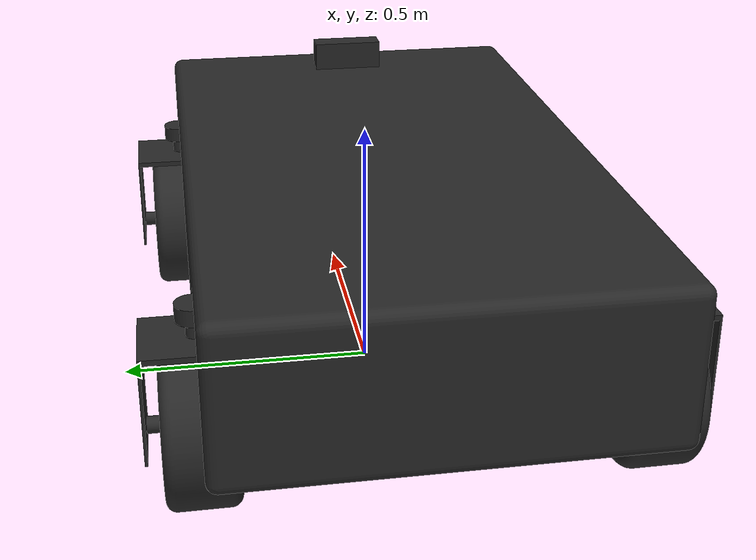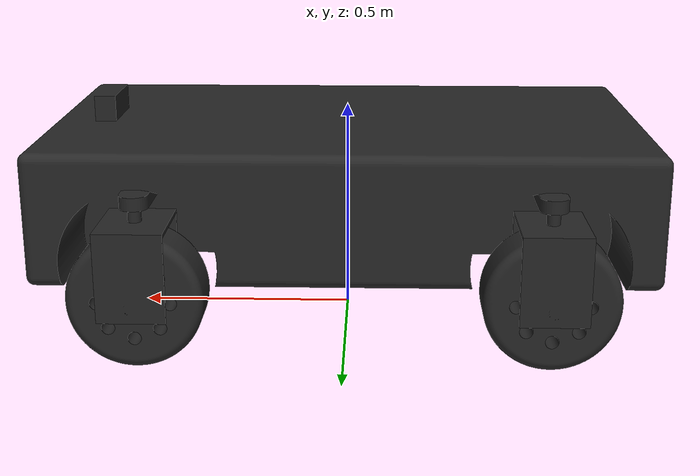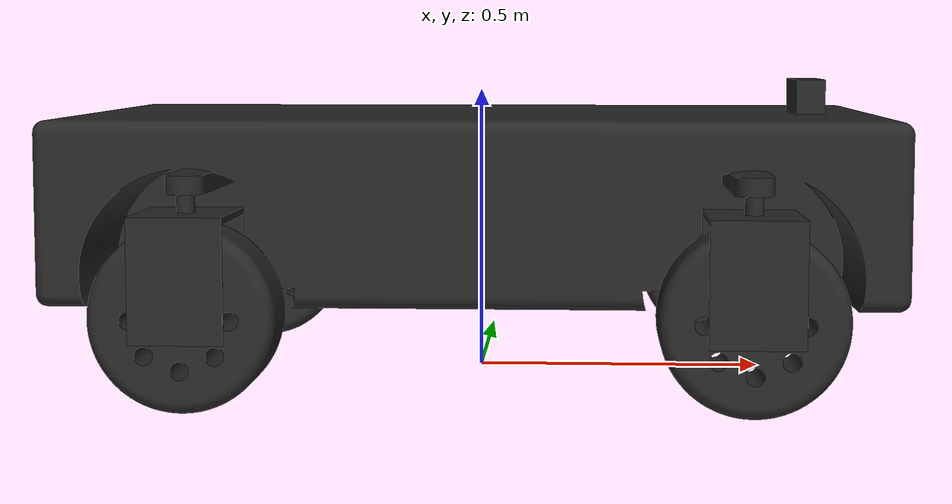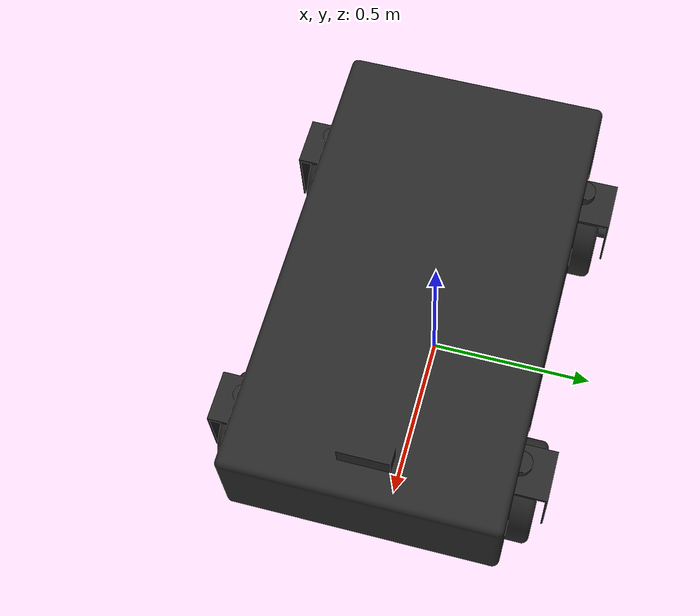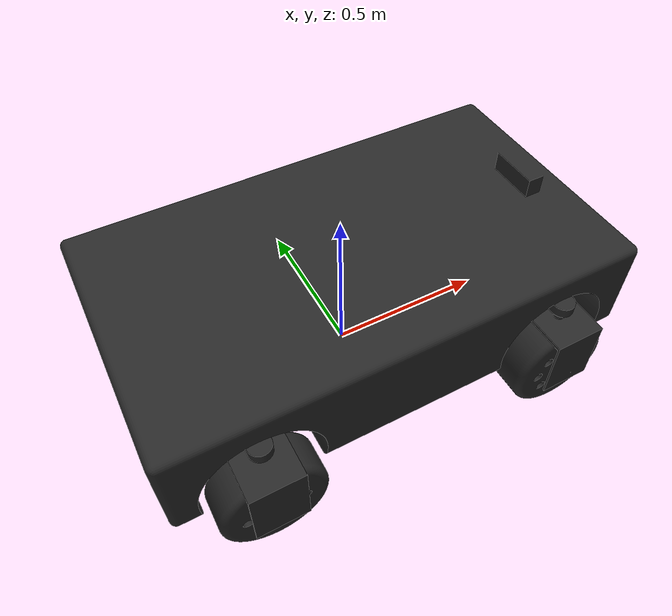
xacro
<?xml version="1.0" ?>
<robot name="vehicle_4ws" xmlns:xacro="http://www.ros.org/wiki/xacro">

<xacro:property name="PI" value="3.1415926535897932384626433832795028841971" />
<xacro:property name="gravitational_acceleration" value="9.80665" />
<xacro:property name="vehicle1_Yaw" value="-PI/4" />

<!-- 荷台と連結点のmass -->
<xacro:property name="fusion_vehicle_body_mass" value="2113.272311120373" />
<xacro:property name="vehicle_body_mass" value="100" />
<xacro:property name="vehicle_inertia_coef" value="${vehicle_body_mass/fusion_vehicle_body_mass}" />

<xacro:property name="wheel_mass" value="4.639715839283939" />

<!-- frontは受動車輪なので低めに設定 -->
<xacro:property name="front_wheel_joint_damping" value="1.0"/>
<xacro:property name="front_wheel_joint_mu" value="0.1" />
<xacro:property name="front_wheel_joint_friction" value="${front_wheel_joint_mu* gravitational_acceleration * wheel_mass  }" />
<xacro:property name="front_steering_damping" value="3.0" />
<xacro:property name="front_steering_mu" value="0.001" />
<xacro:property name="front_steering_friction" value="${front_steering_mu * gravitational_acceleration * 0.25*vehicle_body_mass}" />

<!-- rearは駆動輪なので、入力以外で動かないように設定 -->
<xacro:property name="rear_wheel_joint_damping" value="1.0"/>
<xacro:property name="rear_wheel_joint_mu" value="0.1" />
<xacro:property name="rear_wheel_joint_friction" value="${rear_wheel_joint_mu* gravitational_acceleration * wheel_mass }" />
<xacro:property name="rear_steering_damping" value="3.0" />
<xacro:property name="rear_steering_mu" value="0.001" />
<xacro:property name="rear_steering_friction" value="${rear_steering_mu * gravitational_acceleration * 0.25*vehicle_body_mass}" />

<!-- wheelの接地面の摩擦などを定義 -->
<xacro:property name="wheel_surface_mu1" value="0.8"/>
<xacro:property name="wheel_surface_mu2" value="0.8" />
<xacro:property name="wheel_kp" value="5e4" />
<xacro:property name="wheel_kd" value="1.0" />
<xacro:property name="wheel_minDepth" value="0.01" />
<xacro:property name="wheel_maxVel" value="1.0" />

<!-- rotationは共通 -->
<xacro:property name="rotational_joint_damping" value="0.01" />
<xacro:property name="rotational_joint_mu" value="0.001" />
<xacro:property name="rotational_joint_friction" value="${rotational_joint_mu * gravitational_acceleration}" />

<xacro:include filename="$(find 4ws_backstepping)/urdf/materials.xacro" />
<xacro:include filename="$(find 4ws_backstepping)/urdf/vehicle_4ws.trans" />
<xacro:include filename="$(find 4ws_backstepping)/urdf/vehicle_4ws.gazebo" />

<link name="base_link"/>

<link name="body_link">
  <inertial>
    <origin xyz="0.001411408730126027 0.0 -0.05" rpy="0 0 0"/>
    <mass value="${vehicle_body_mass}"/>
    <inertia ixx="${vehicle_inertia_coef*114.688091}" iyy="${vehicle_inertia_coef*336.418835}" izz="${vehicle_inertia_coef*418.647558}" ixy="${vehicle_inertia_coef*0.010139}" iyz="${vehicle_inertia_coef*0.002956}" ixz="${-vehicle_inertia_coef*0.33997}"/>
  </inertial>
  <visual>
    <origin xyz="0 0 -0.376" rpy="0 0 0"/>
    <geometry>
      <mesh filename="package://4ws_backstepping/new_meshes/base_link.stl" scale="0.001 0.001 0.001"/>
    </geometry>
    <material name="_"/>
  </visual>
  <collision>
    <origin xyz="0 0.0 -0.376" rpy="0 0 0"/>
    <geometry>
      <mesh filename="package://4ws_backstepping/new_meshes/base_link.stl" scale="0.001 0.001 0.001"/>
    </geometry>
  </collision>
</link>

<link name="v1_rear_1">
  <inertial>
    <origin xyz="2.514264385022891e-07 -0.05 -0.014912246259012996" rpy="0 0 0"/>
    <mass value="12.646385127140846"/>
    <inertia ixx="0.752015" iyy="0.005192" izz="0.755318" ixy="0.0" iyz="0.0" ixz="-0.0"/>
  </inertial>
  <visual>
    <origin xyz="0.44955 -0.05752 -0.376" rpy="0 0 0"/>
    <geometry>
      <mesh filename="package://4ws_backstepping/new_meshes/v1_rear_1.stl" scale="0.001 0.001 0.001"/>
    </geometry>
    <material name="_"/>
  </visual>
  <collision>
    <origin xyz="0.44955 -0.05752 -0.376" rpy="0 0 0"/>
    <geometry>
      <mesh filename="package://4ws_backstepping/new_meshes/v1_rear_1.stl" scale="0.001 0.001 0.001"/>
    </geometry>
  </collision>
</link>

<link name="v1_front_1">
  <inertial>
    <origin xyz="2.5142643794717756e-07 -0.05 -0.014912246259013162" rpy="0 0 0"/>
    <mass value="12.64638512714101"/>
    <inertia ixx="0.752015" iyy="0.005192" izz="0.755318" ixy="-0.0" iyz="0.0" ixz="-0.0"/>
  </inertial>
  <visual>
    <origin xyz="-0.45045 -0.05752 -0.376" rpy="0 0 0"/>
    <geometry>
      <mesh filename="package://4ws_backstepping/new_meshes/v1_front_1.stl" scale="0.001 0.001 0.001"/>
    </geometry>
    <material name="_"/>
  </visual>
  <collision>
    <origin xyz="-0.45045 -0.05752 -0.376" rpy="0 0 0"/>
    <geometry>
      <mesh filename="package://4ws_backstepping/new_meshes/v1_front_1.stl" scale="0.001 0.001 0.001"/>
    </geometry>
  </collision>
</link>

<link name="new_hinge_1">
  <inertial>
    <origin xyz="-6.714468377522209e-05 -0.05 -0.11523004751915897" rpy="0 0 0"/>
    <mass value="4.884144703315957"/>
    <inertia ixx="0.039519" iyy="0.032652" izz="0.021551" ixy="0.0" iyz="0.0" ixz="-3e-05"/>
  </inertial>
  <visual>
    <origin xyz="-0.45045 0.34348 -0.356" rpy="0 0 0"/>
    <geometry>
      <mesh filename="package://4ws_backstepping/new_meshes/new_hinge_1.stl" scale="0.001 0.001 0.001"/>
    </geometry>
    <material name="_"/>
  </visual>
  <collision>
    <origin xyz="-0.45045 0.34348 -0.356" rpy="0 0 0"/>
    <geometry>
      <mesh filename="package://4ws_backstepping/new_meshes/new_hinge_1.stl" scale="0.001 0.001 0.001"/>
    </geometry>
  </collision>
</link>

<link name="new_hinge_3">
  <inertial>
    <origin xyz="-6.714468377522209e-05 -0.05 -0.11523004751915977" rpy="0 0 0"/>
    <mass value="4.884144703315957"/>
    <inertia ixx="0.039519" iyy="0.032652" izz="0.021551" ixy="-0.0" iyz="0.0" ixz="-3e-05"/>
  </inertial>
  <visual>
    <origin xyz="-0.45045 -0.45752 -0.356" rpy="0 0 0"/>
    <geometry>
      <mesh filename="package://4ws_backstepping/new_meshes/new_hinge_3.stl" scale="0.001 0.001 0.001"/>
    </geometry>
    <material name="_"/>
  </visual>
  <collision>
    <origin xyz="-0.45045 -0.45752 -0.356" rpy="0 0 0"/>
    <geometry>
      <mesh filename="package://4ws_backstepping/new_meshes/new_hinge_3.stl" scale="0.001 0.001 0.001"/>
    </geometry>
  </collision>
</link>

<link name="new_hinge_2">
  <inertial>
    <origin xyz="-6.714468377322369e-05 -0.05 -0.1152300475191588" rpy="0 0 0"/>
    <mass value="4.884144703315957"/>
    <inertia ixx="0.039519" iyy="0.032652" izz="0.021551" ixy="0.0" iyz="0.0" ixz="-3e-05"/>
  </inertial>
  <visual>
    <origin xyz="0.44955 0.34348 -0.356" rpy="0 0 0"/>
    <geometry>
      <mesh filename="package://4ws_backstepping/new_meshes/new_hinge_2.stl" scale="0.001 0.001 0.001"/>
    </geometry>
    <material name="_"/>
  </visual>
  <collision>
    <origin xyz="0.44955 0.34348 -0.356" rpy="0 0 0"/>
    <geometry>
      <mesh filename="package://4ws_backstepping/new_meshes/new_hinge_2.stl" scale="0.001 0.001 0.001"/>
    </geometry>
  </collision>
</link>

<link name="new_hinge_4">
  <inertial>
    <origin xyz="-6.714468377405636e-05 -0.05 -0.11523004751915963" rpy="0 0 0"/>
    <mass value="4.884144703315957"/>
    <inertia ixx="0.039519" iyy="0.032652" izz="0.021551" ixy="0.0" iyz="0.0" ixz="-3e-05"/>
  </inertial>
  <visual>
    <origin xyz="0.44955 -0.45752 -0.356" rpy="0 0 0"/>
    <geometry>
      <mesh filename="package://4ws_backstepping/new_meshes/new_hinge_4.stl" scale="0.001 0.001 0.001"/>
    </geometry>
    <material name="_"/>
  </visual>
  <collision>
    <origin xyz="0.44955 -0.45752 -0.356" rpy="0 0 0"/>
    <geometry>
      <mesh filename="package://4ws_backstepping/new_meshes/new_hinge_4.stl" scale="0.001 0.001 0.001"/>
    </geometry>
  </collision>
</link>

<!-- ホイールのリンク設定 -->
<link name="new_wheel_1">
  <inertial>
    <origin xyz="3.1709373395083507e-05 -0.05 0.00021681028363659816" rpy="0 0 0"/>
    <mass value="4.639715839283939"/>
    <inertia ixx="0.029034" iyy="0.053334" izz="0.029034" ixy="-0.0" iyz="0.0" ixz="0.0"/>
  </inertial>
  <visual>
    <origin xyz="-0.450031 0.34348 -0.150215" rpy="0 0 0"/>
    <geometry>
      <mesh filename="package://4ws_backstepping/new_meshes/new_wheel_1.stl" scale="0.001 0.001 0.001"/>
    </geometry>
    <material name="_"/>
  </visual>
  <collision>
    <origin xyz="0 -0.05 0" rpy="1.57 0 0"/>
    <geometry>
      <cylinder radius="0.153" length="0.1"/>
    </geometry>

    <!-- ここから SDF の surface/friction -->
    <surface>
      <friction>
        <ode>
          <mu>${wheel_surface_mu1}</mu>
          <mu2>${wheel_surface_mu2}</mu2>
        </ode>
      </friction>
      <contact>
        <ode>
          <kp>${wheel_kp}</kp>
          <kd>${wheel_kd}</kd>
          <minDepth>${wheel_minDepth}</minDepth>
          <maxVel>${wheel_maxVel}</maxVel>
        </ode>
      </contact>
    </surface>
  </collision>
</link>

<link name="new_wheel_2">
  <inertial>
    <origin xyz="3.1709373397914575e-05 -0.05 0.00021681028363673693" rpy="0 0 0"/>
    <mass value="4.639715839283939"/>
    <inertia ixx="0.029034" iyy="0.053334" izz="0.029034" ixy="0.0" iyz="0.0" ixz="0.0"/>
  </inertial>
  <visual>
    <origin xyz="0.449969 0.34348 -0.150215" rpy="0 0 0"/>
    <geometry>
      <mesh filename="package://4ws_backstepping/new_meshes/new_wheel_2.stl" scale="0.001 0.001 0.001"/>
    </geometry>
    <material name="_"/>
  </visual>
  <collision>
    <origin xyz="0 -0.05 0" rpy="1.57 0 0"/>
    <geometry>
      <cylinder radius="0.153" length="0.1"/>
    </geometry>

    <!-- ここから SDF の surface/friction -->
    <surface>
      <friction>
        <ode>
          <mu>${wheel_surface_mu1}</mu>
          <mu2>${wheel_surface_mu2}</mu2>
        </ode>
      </friction>
      <contact>
        <ode>
          <kp>${wheel_kp}</kp>
          <kd>${wheel_kd}</kd>
          <minDepth>${wheel_minDepth}</minDepth>
          <maxVel>${wheel_maxVel}</maxVel>
        </ode>
      </contact>
    </surface>
  </collision>
</link>

<link name="new_wheel_3">
  <inertial>
    <origin xyz="3.1709373395083507e-05 -0.05 0.00021681028363579324" rpy="0 0 0"/>
    <mass value="4.639715839283939"/>
    <inertia ixx="0.029034" iyy="0.053334" izz="0.029034" ixy="0.0" iyz="0.0" ixz="0.0"/>
  </inertial>
  <visual>
    <origin xyz="-0.450031 -0.45752 -0.150215" rpy="0 0 0"/>
    <geometry>
      <mesh filename="package://4ws_backstepping/new_meshes/new_wheel_3.stl" scale="0.001 0.001 0.001"/>
    </geometry>
    <material name="_"/>
  </visual>
  <collision>
    <origin xyz="0 -0.05 0" rpy="1.57 0 0"/>
    <geometry>
      <cylinder radius="0.153" length="0.1"/>
    </geometry>

    <!-- ここから SDF の surface/friction -->
    <surface>
      <friction>
        <ode>
          <mu>${wheel_surface_mu1}</mu>
          <mu2>${wheel_surface_mu2}</mu2>
        </ode>
      </friction>
      <contact>
        <ode>
          <kp>${wheel_kp}</kp>
          <kd>${wheel_kd}</kd>
          <minDepth>${wheel_minDepth}</minDepth>
          <maxVel>${wheel_maxVel}</maxVel>
        </ode>
      </contact>
    </surface>
  </collision>
</link>

<link name="new_wheel_4">
  <inertial>
    <origin xyz="3.170937339708191e-05 -0.05 0.00021681028363593202" rpy="0 0 0"/>
    <mass value="4.639715839283939"/>
    <inertia ixx="0.029034" iyy="0.053334" izz="0.029034" ixy="0.0" iyz="0.0" ixz="0.0"/>
  </inertial>
  <visual>
    <origin xyz="0.449969 -0.45752 -0.150215" rpy="0 0 0"/>
    <geometry>
      <mesh filename="package://4ws_backstepping/new_meshes/new_wheel_4.stl" scale="0.001 0.001 0.001"/>
    </geometry>
    <material name="_"/>
  </visual>
  <collision>
    <origin xyz="0 -0.05 0" rpy="1.57 0 0"/>
    <geometry>
      <cylinder radius="0.153" length="0.1"/>
    </geometry>

    <!-- ここから SDF の surface/friction -->
    <surface>
      <friction>
        <ode>
          <mu>${wheel_surface_mu1}</mu>
          <mu2>${wheel_surface_mu2}</mu2>
        </ode>
      </friction>
      <contact>
        <ode>
          <kp>${wheel_kp}</kp>
          <kd>${wheel_kd}</kd>
          <minDepth>${wheel_minDepth}</minDepth>
          <maxVel>${wheel_maxVel}</maxVel>
        </ode>
      </contact>
    </surface>
  </collision>
</link>

<joint name="body" type="fixed">
  <origin xyz="0 -0.05 0.376" rpy="0 0 0"/>
  <parent link="base_link"/>
  <child link="body_link"/>
</joint>

<joint name="v1_body_to_rear" type="fixed">
  <origin xyz="-0.44955 0.05752 0" rpy="0 0 0"/>
  <parent link="body_link"/>
  <child link="v1_rear_1"/>
</joint>

<joint name="v1_body_to_front" type="fixed">
  <origin xyz="0.45045 0.05752 0" rpy="0 0 0"/>
  <parent link="body_link"/>
  <child link="v1_front_1"/>
</joint>

<joint name="front_right_steering" type="revolute">
  <origin xyz="0.0 -0.4 -0.02" rpy="0 0 0"/>
  <parent link="v1_front_1"/>
  <child link="new_hinge_1"/>
  <dynamics damping="${front_steering_damping}" friction="${front_steering_friction}"/>
  <axis xyz="0.0 0.0 1.0"/>
  <limit upper="1.57" lower="-1.57" effort="200" velocity="200"/>
</joint>

<joint name="front_right_wheel" type="continuous">
  <origin xyz="-0.000419 0.0 -0.205785" rpy="0 0 0"/>
  <parent link="new_hinge_1"/>
  <child link="new_wheel_1"/>
  <dynamics damping="${front_wheel_joint_damping}" friction="${front_wheel_joint_friction}"/>
  <limit effort="500" velocity="500"/>
  <axis xyz="0.0 1.0 -0.0"/>
</joint>

<joint name="rear_right_wheel" type="continuous">
  <origin xyz="-0.000419 0.0 -0.205785" rpy="0 0 0"/>
  <parent link="new_hinge_2"/>
  <child link="new_wheel_2"/>
  <dynamics damping="${rear_wheel_joint_damping}" friction="${rear_wheel_joint_friction}"/>
  <limit effort="500" velocity="500"/>
  <axis xyz="0.0 1.0 -0.0"/>
</joint>

<joint name="front_left_steering" type="revolute">
  <origin xyz="0.0 0.4 -0.02" rpy="0 0 0"/>
  <parent link="v1_front_1"/>
  <child link="new_hinge_3"/>
  <dynamics damping="${front_steering_damping}" friction="${front_steering_friction}"/>
  <axis xyz="0.0 0.0 1.0"/>
  <limit upper="1.57" lower="-1.57" effort="200" velocity="200"/>
</joint>

<joint name="front_left_wheel" type="continuous">
  <origin xyz="-0.000419 0.0 -0.205785" rpy="0 0 0"/>
  <parent link="new_hinge_3"/>
  <child link="new_wheel_3"/>
  <dynamics damping="${front_wheel_joint_damping}" friction="${front_wheel_joint_friction}"/>
  <limit effort="500" velocity="500"/>
  <axis xyz="0.0 1.0 -0.0"/>
</joint>

<joint name="rear_left_wheel" type="continuous">
  <origin xyz="-0.000419 0.0 -0.205785" rpy="0 0 0"/>
  <parent link="new_hinge_4"/>
  <child link="new_wheel_4"/>
  <dynamics damping="${rear_wheel_joint_damping}" friction="${rear_wheel_joint_friction}"/>
  <limit effort="500" velocity="500"/>
  <axis xyz="0.0 1.0 -0.0"/>
</joint>

<!-- 後輪右ステア -->
<joint name="rear_right_steering" type="revolute">
  <origin xyz="0.0 -0.4 -0.02" rpy="0 0 0"/>
  <parent link="v1_rear_1"/>
  <child  link="new_hinge_2"/>
  <!-- ステア駆動時のダンピング・摩擦 -->
  <dynamics damping="${rear_steering_damping}" friction="${rear_steering_friction}"/>
  <!-- 回転軸は Z 方向 -->
  <axis    xyz="0.0 0.0 1.0"/>
  <!-- 可動範囲／トルク／速度制限 -->
  <limit  lower="-1.57" upper="1.57" effort="200" velocity="200"/>
</joint>

<!-- 後輪左ステア -->
<joint name="rear_left_steering" type="revolute">
  <origin xyz="0.0 0.4 -0.02" rpy="0 0 0"/>
  <parent link="v1_rear_1"/>
  <child  link="new_hinge_4"/>
  <dynamics damping="${rear_steering_damping}" friction="${rear_steering_friction}"/>
  <axis    xyz="0.0 0.0 1.0"/>
  <limit  lower="-1.57" upper="1.57" effort="200" velocity="200"/>
</joint>

</robot>

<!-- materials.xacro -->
<robot name="vehicle_4ws" xmlns:xacro="http://www.ros.org/wiki/xacro" >

<xacro:macro name="box_inertia" params="m x y z">
	    <inertia ixx="${m*(y*y+z*z)/12}" ixy = "0" ixz = "0"
	             iyy="${m*(z*z+x*x)/12}" iyz = "0"
	             izz="${m*(x*x+y*y)/12}" />
	  </xacro:macro>

	  <xacro:macro name="cariier_inertia" params="m x y z">
	    <inertia ixx="${m*(y*y+z*z)/12}" ixy = "0" ixz = "0"
	             iyy="${m*(z*z+x*x)/12}" iyz = "0"
	             izz="${m*(x*x+y*y)/12}" />
	  </xacro:macro>
	  <xacro:macro name="cylinder_inertia" params="m r h">
	    <inertia ixx="${m*(3*r*r+h*h)/12}" ixy="0" ixz="0"
	             iyy="${m*(3*r*r+h*h)/12}" iyz="0"
	             izz="${m*r*r/2}" />
	  </xacro:macro>
	  <xacro:macro name="sphere_inertia" params="m r">
	    <inertia ixx="${m*r*r/5}" ixy="0" ixz="0"
	             iyy="${m*r*r/5}" iyz="0"
	             izz="${m*r*r/5}" />
	  </xacro:macro>

<material name="silver_default">
  <color rgba="0.700 0.700 0.700 1.000"/>
</material>
<material name="_">
  <color rgba="0.15294117647058825 0.15294117647058825 0.15294117647058825 1.0"/>
</material>

<!-- Color -->
<material name="green">
	<color rgba="0.0 0.8 0.0 1.0"/>
</material>
<material name="red">
  <color rgba="0.8 0.0 0.0 1.0"/>
</material>
<material name="white">
  <color rgba="1.0 1.0 1.0 1.0"/>
</material>
<material name="body_red">
    <color rgba="1.0 0.0 0.0 0.5"/>
</material>
<material name="yellow">
    <color rgba="1.0 1.0 0.0 1.0"/>
</material>
<material name="blue">
    <color rgba="0.0 0.0 1.0 1.0"/>
</material>
<material name="orange">
    <color rgba="1.0 0.4 0.0 1.0"/>
</material>
<material name="black">
    <color rgba="0.0 0.0 0.0 1.0"/>
</material>
<material name="gray">
    <color rgba="0.5 0.5 0.5 1.0"/>
</material>

</robot>

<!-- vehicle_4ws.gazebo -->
<robot name="vehicle_4ws" xmlns:xacro="http://www.ros.org/wiki/xacro" >

<xacro:property name="body_color" value="Gazebo/Red" />
<xacro:property name="carrier" value="Gazebo/Yellow" />
<xacro:property name="hinge" value="Gazebo/Silver" />
<xacro:property name="sliding_machine" value="Gazebo/Orange" />
<xacro:property name="wheel" value="Gazebo/Gray" />

<gazebo>
    <plugin name="gazebo_ros_control" filename="libgazebo_ros_control.so">
    <robotNamespace>/vehicle_4ws</robotNamespace>
    <robotSimType>gazebo_ros_control/DefaultRobotHWSim</robotSimType>
    <legacyModeNS>true</legacyModeNS>
    </plugin>
</gazebo>

<!-- 各リンクの絶対座標を取得するためのプラグイン -->
<gazebo>
  <plugin name="ground_truth" filename="libgazebo_ros_p3d.so">
    <robotNamespace>/vehicle_4ws</robotNamespace>
    <bodyName>base_link</bodyName>
    <frameName>world</frameName>
    <topicName>true_base_link</topicName>
  </plugin>
</gazebo>

<gazebo>
  <plugin name="ground_truth" filename="libgazebo_ros_p3d.so">
    <robotNamespace>/vehicle_4ws</robotNamespace>
    <bodyName>body_link</bodyName>
    <frameName>world</frameName>
    <topicName>true_body_link</topicName>
  </plugin>
</gazebo>

<gazebo>
  <plugin name="ground_truth" filename="libgazebo_ros_p3d.so">
    <robotNamespace>/vehicle_4ws</robotNamespace>
    <bodyName>new_hinge_1</bodyName>
    <frameName>world</frameName>
    <topicName>true_front_right_steering_link</topicName>
  </plugin>
</gazebo>

<gazebo>
  <plugin name="ground_truth" filename="libgazebo_ros_p3d.so">
    <robotNamespace>/vehicle_4ws</robotNamespace>
    <bodyName>new_hinge_3</bodyName>
    <frameName>world</frameName>
    <topicName>true_front_left_steering_link</topicName>
  </plugin>
</gazebo>

<gazebo>
  <plugin name="ground_truth" filename="libgazebo_ros_p3d.so">
    <robotNamespace>/vehicle_4ws</robotNamespace>
    <bodyName>new_hinge_2</bodyName>
    <frameName>world</frameName>
    <topicName>true_rear_right_steering_link</topicName>
  </plugin>
</gazebo>

<gazebo>
  <plugin name="ground_truth" filename="libgazebo_ros_p3d.so">
    <robotNamespace>/vehicle_4ws</robotNamespace>
    <bodyName>new_hinge_4</bodyName>
    <frameName>world</frameName>
    <topicName>true_rear_left_steering_link</topicName>
  </plugin>
</gazebo>

<gazebo>
  <plugin name="plot3d_trajectory" filename="libLinkPlot3DPlugin.so">
    <!-- 軌跡更新頻度（Hz） -->
    <frequency>30</frequency>

    <plot>
      <!-- モデル名::リンク名 -->
      <link>vehicle_4ws::base_link</link>
      <pose>-0.5 0 0.00 0 0 0</pose>
      <!-- Gazebo 内定義済みマテリアル -->
      <material>Gazebo/Yellow</material>
    </plot>

  </plugin>
</gazebo>

<gazebo reference="body_link">
  <material>${body_color}</material>
  <mu1>0.2</mu1>
  <mu2>0.2</mu2>
  <selfCollide>true</selfCollide>
  <gravity>true</gravity>
</gazebo>

<gazebo reference="v1_rear_1">
  <material>${body_color}</material>
  <mu1>0.2</mu1>
  <mu2>0.2</mu2>
  <selfCollide>false</selfCollide>
</gazebo>

<gazebo reference="v1_front_1">
  <material>${body_color}</material>
  <mu1>0.2</mu1>
  <mu2>0.2</mu2>
  <selfCollide>false</selfCollide>
</gazebo>

<gazebo reference="new_hinge_1">
  <material>${hinge}</material>
  <mu1>0.2</mu1>
  <mu2>0.2</mu2>
  <selfCollide>false</selfCollide>
</gazebo>

<gazebo reference="new_wheel_1">
  <material>${wheel}</material>
  <mu1>${wheel_surface_mu1}</mu1>
  <mu2>${wheel_surface_mu2}</mu2>
  <selfCollide>false</selfCollide>
</gazebo>

<gazebo reference="new_wheel_2">
  <material>${wheel}</material>
  <mu1>${wheel_surface_mu1}</mu1>
  <mu2>${wheel_surface_mu2}</mu2>
  <selfCollide>true</selfCollide>
</gazebo>

<gazebo reference="new_hinge_3">
  <material>${hinge}</material>
  <mu1>0.2</mu1>
  <mu2>0.2</mu2>
  <selfCollide>false</selfCollide>
</gazebo>

<gazebo reference="new_wheel_3">
  <material>${wheel}</material>
  <mu1>${wheel_surface_mu1}</mu1>
  <mu2>${wheel_surface_mu2}</mu2>
  <selfCollide>false</selfCollide>
</gazebo>

<gazebo reference="new_wheel_4">
  <material>${wheel}</material>
  <mu1>${wheel_surface_mu1}</mu1>
  <mu2>${wheel_surface_mu2}</mu2>
  <selfCollide>true</selfCollide>
</gazebo>

<gazebo reference="new_hinge_2">
  <material>${hinge}</material>
  <mu1>0.2</mu1>
  <mu2>0.2</mu2>
  <selfCollide>true</selfCollide>
</gazebo>

<gazebo reference="new_hinge_4">
  <material>${hinge}</material>
  <mu1>0.2</mu1>
  <mu2>0.2</mu2>
  <selfCollide>true</selfCollide>
</gazebo>

</robot>
